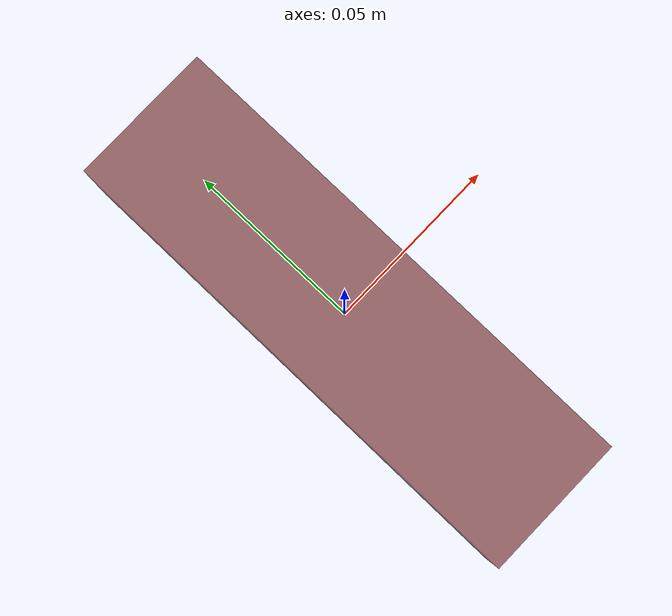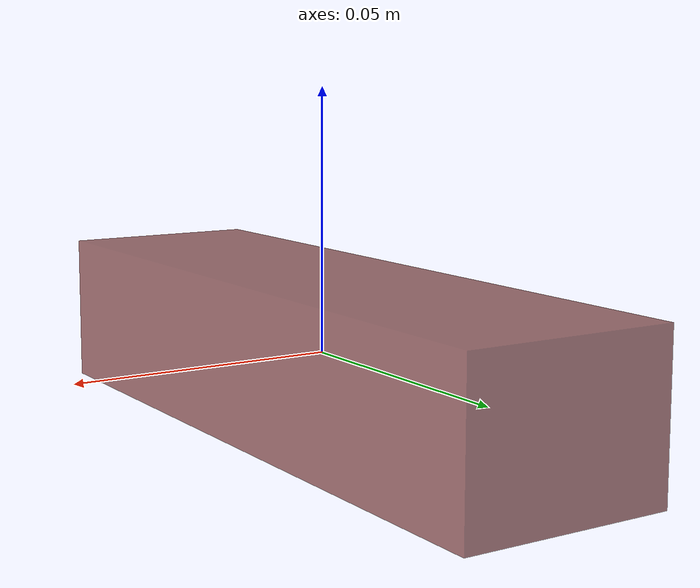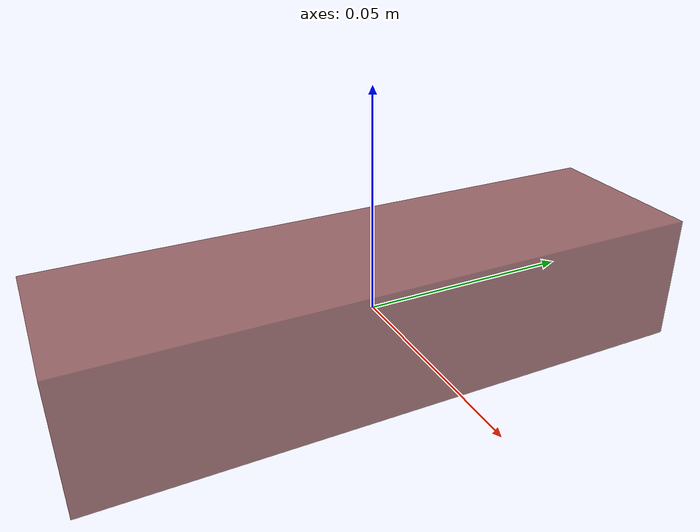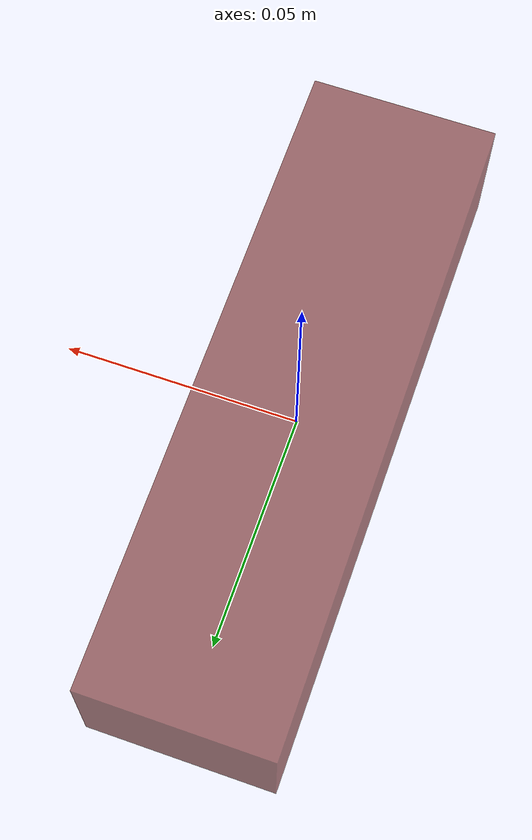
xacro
<?xml version="1.0"?>
<robot xmlns:xacro="http://www.ros.org/wiki/xacro" name="box">
    <xacro:property name="PI" value="3.14159265359" />
    <xacro:property name="bodylength_x" value="0.04" />
    <xacro:property name="bodylength_y" value="0.14" />
    <xacro:property name="bodylength_z" value="0.03" />
    <xacro:property name="width" value="0.025" />
    <xacro:property name="opacity" value="0.7" />
    <xacro:property name="obj_x" value="0.0" />
    <xacro:property name="obj_y" value="0.0" />
    <xacro:property name="obj_z" value="0.0" />
    <!-- Base link -->
    <link name="obj_base">
        <origin xyz="0 0 0" rpy="0 0 0"/>
    </link>
    <joint name="joint_x" type="revolute">
        <axis xyz="1 0 0"/>
        <limit effort="15" lower="-0.47" upper="0.47" velocity="7"/>
        <parent link="obj_base"/>
        <child link="virtual_x"/>
        <origin xyz="0 0 0" rpy="0 0 0"/>
    </joint>
    <link name="virtual_x"/>
    <joint name="joint_y" type="revolute">
        <axis xyz="0 1 0"/>
        <limit effort="15" lower="-0.47" upper="0.47" velocity="7"/>
        <parent link="virtual_x"/>
        <child link="virtual_y"/>
        <origin xyz="0 0 0" rpy="0 0 0"/>
    </joint>
    <link name="virtual_y"/>
    <joint name="joint_z" type="revolute">
        <axis xyz="0 0 1"/>
        <limit effort="15" lower="-0.47" upper="0.47" velocity="7"/>
        <parent link="virtual_y"/>
        <child link="object_link"/>
        <origin xyz="0 0 0" rpy="0 0 0"/>
    </joint>
    <link name="object_link">
        <visual>
            <geometry>
                <box size="${bodylength_x} ${bodylength_y} ${bodylength_z}"/>
            </geometry>
            <origin rpy="0 0 0" xyz="${obj_x} ${obj_y} ${obj_z}"/>
            <material name="red">
                <color rgba="0.5 0.2 0.2 ${opacity}"/>
            </material>
        </visual>
        <collision>
            <geometry>
                <box size="${bodylength_x} ${bodylength_y} ${bodylength_z}"/>
            </geometry>
        </collision>
    </link>
</robot>
